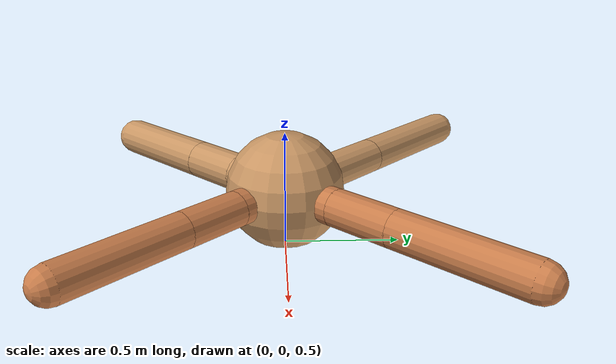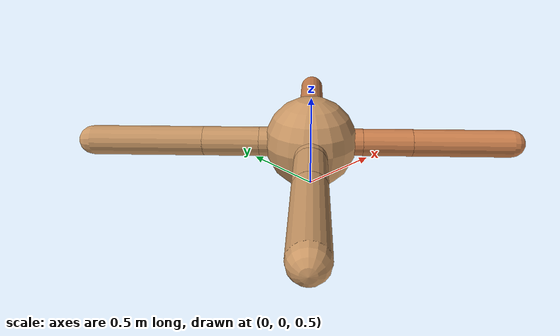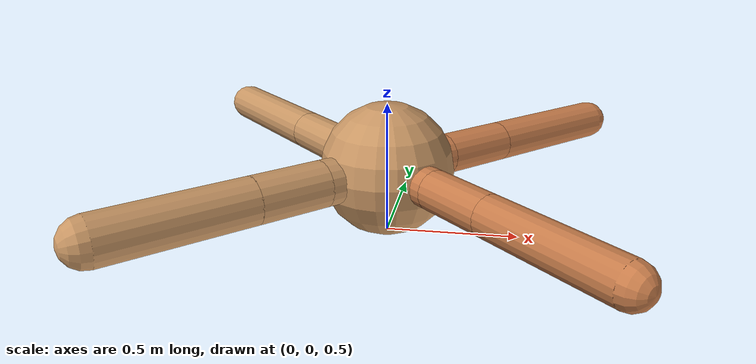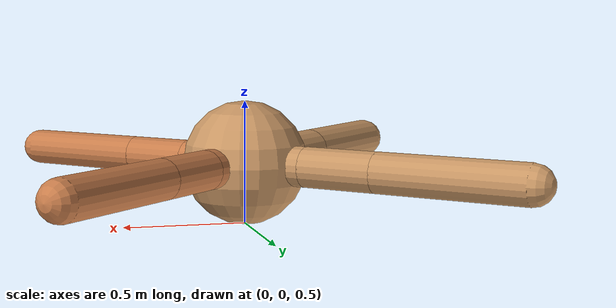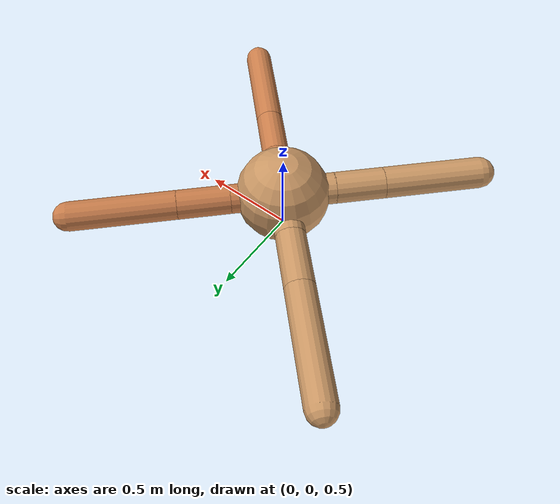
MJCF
<?xml version="1.0" ?>
<mujoco model="ant">

	<compiler angle="degree" coordinate="local" inertiafromgeom="true"/>

	<option integrator="RK4" timestep="0.01"/>

	<custom>

		<numeric data="0.0 0.0 0.55 1.0 0.0 0.0 0.0 0.0 1.0 0.0 -1.0 0.0 -1.0 0.0 1.0" name="init_qpos"/>

	</custom>

	<default>

		<joint armature="1" damping="1" limited="true"/>

		<geom conaffinity="0" condim="3" density="5.0" friction="1.5 0.1 0.1" margin="0.01" rgba="0.8 0.6 0.4 1"/>

	</default>

	<worldbody>

		<body name="torso" pos="0 0 0.75">

			<geom name="torso_geom" pos="0 0 0" size="0.2530343192302024" type="sphere"/>

			<!--joint armature="0" damping="0" limited="false" margin="0.01" name="root" pos="0 0 0" type="free"/-->

			<body name="front_left_leg" pos="0 0 0">

				<geom fromto="0 0 0 0.2 0.2 0" name="aux_1_geom" size="0.07927941736142674" type="capsule" rgba=".8 .5 .3 1"/>

				<body name="aux_1" pos="0.2 0.2 0">

					<joint axis="0 0 1" name="hip_1" pos="0.0 0.0 0.0" range="-40 40" type="hinge"/>

					<geom fromto="0 0 0 0.20141994431733018 0.20141994431733018 0" name="left_leg_geom" size="0.07927941736142674" type="capsule" rgba=".8 .5 .3 1"/>

					<body pos="0.20141994431733018 0.20141994431733018 0" name="front_left_foot">

						<joint axis="-1 1 0" name="ankle_1" pos="0.0 0.0 0.0" range="30 100" type="hinge"/>

						<geom fromto="0 0 0 0.40283988863466036 0.40283988863466036 0" name="left_ankle_geom" size="0.07927941736142674" type="capsule" rgba=".8 .5 .3 1"/>

					</body>

				</body>

			</body>

			<body name="front_right_leg" pos="0 0 0">

				<geom fromto="0 0 0 -0.2 0.2 0" name="aux_2_geom" size="0.08094761315586228" type="capsule"/>

				<body name="aux_2" pos="-0.2 0.2 0">

					<joint axis="0 0 1" name="hip_2" pos="0.0 0.0 0.0" range="-40 40" type="hinge"/>

					<geom fromto="0 0 0 -0.21758902486080534 0.21758902486080534 0" name="right_leg_geom" size="0.08094761315586228" type="capsule"/>

					<body pos="-0.21758902486080534 0.21758902486080534 0" name="front_right_foot">

						<joint axis="1 1 0" name="ankle_2" pos="0.0 0.0 0.0" range="-100 -30" type="hinge"/>

						<geom fromto="0 0 0 -0.43517804972161067 0.43517804972161067 0" name="right_ankle_geom" size="0.08094761315586228" type="capsule"/>

					</body>

				</body>

			</body>

			<body name="left_back_leg" pos="0 0 0">

				<geom fromto="0 0 0 -0.2 -0.2 0" name="aux_3_geom" size="0.08584885957563484" type="capsule"/>

				<body name="aux_3" pos="-0.2 -0.2 0">

					<joint axis="0 0 1" name="hip_3" pos="0.0 0.0 0.0" range="-40 40" type="hinge"/>

					<geom fromto="0 0 0 -0.18889729738655278 -0.18889729738655278 0" name="back_leg_geom" size="0.08584885957563484" type="capsule"/>

					<body pos="-0.18889729738655278 -0.18889729738655278 0" name="left_back_foot">

						<joint axis="-1 1 0" name="ankle_3" pos="0.0 0.0 0.0" range="-100 -30" type="hinge"/>

						<geom fromto="0 0 0 -0.37779459477310556 -0.37779459477310556 0" name="third_ankle_geom" size="0.08584885957563484" type="capsule"/>

					</body>

				</body>

			</body>

			<body name="right_back_leg" pos="0 0 0">

				<geom fromto="0 0 0 0.2 -0.2 0" name="aux_4_geom" size="0.07475625079360787" type="capsule" rgba=".8 .5 .3 1"/>

				<body name="aux_4" pos="0.2 -0.2 0">

					<joint axis="0 0 1" name="hip_4" pos="0.0 0.0 0.0" range="-40 40" type="hinge"/>

					<geom fromto="0 0 0 0.190928937760353 -0.190928937760353 0" name="rightback_leg_geom" size="0.07475625079360787" type="capsule" rgba=".8 .5 .3 1"/>

					<body pos="0.190928937760353 -0.190928937760353 0" name="right_back_foot">

						<joint axis="1 1 0" name="ankle_4" pos="0.0 0.0 0.0" range="30 100" type="hinge"/>

						<geom fromto="0 0 0 0.381857875520706 -0.381857875520706 0" name="fourth_ankle_geom" size="0.07475625079360787" type="capsule" rgba=".8 .5 .3 1"/>

					</body>

				</body>

			</body>

		</body>

	</worldbody>

	<actuator>

		<motor ctrllimited="true" ctrlrange="-1.0 1.0" joint="hip_4" gear="150"/>

		<motor ctrllimited="true" ctrlrange="-1.0 1.0" joint="ankle_4" gear="150"/>

		<motor ctrllimited="true" ctrlrange="-1.0 1.0" joint="hip_1" gear="150"/>

		<motor ctrllimited="true" ctrlrange="-1.0 1.0" joint="ankle_1" gear="150"/>

		<motor ctrllimited="true" ctrlrange="-1.0 1.0" joint="hip_2" gear="150"/>

		<motor ctrllimited="true" ctrlrange="-1.0 1.0" joint="ankle_2" gear="150"/>

		<motor ctrllimited="true" ctrlrange="-1.0 1.0" joint="hip_3" gear="150"/>

		<motor ctrllimited="true" ctrlrange="-1.0 1.0" joint="ankle_3" gear="150"/>

	</actuator>

</mujoco>
